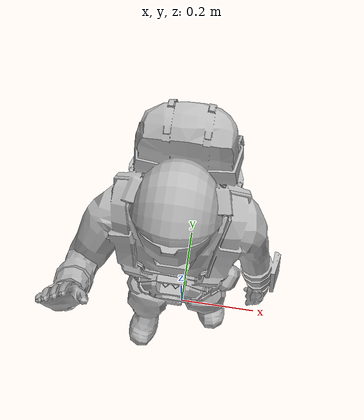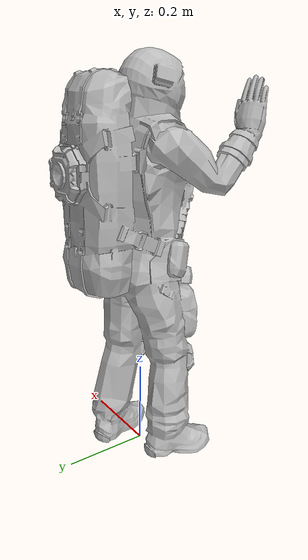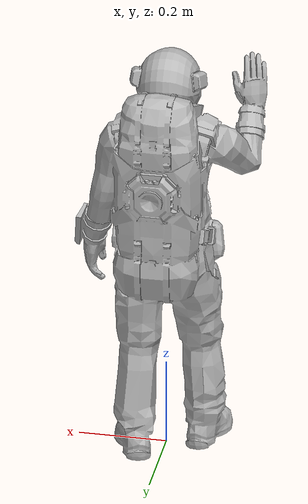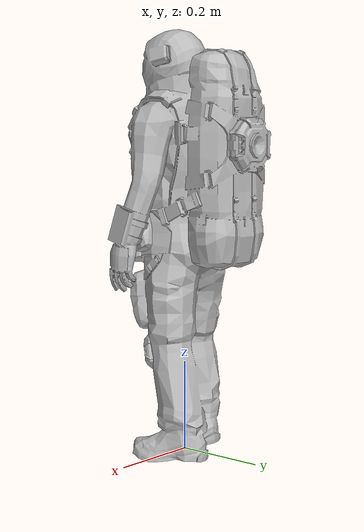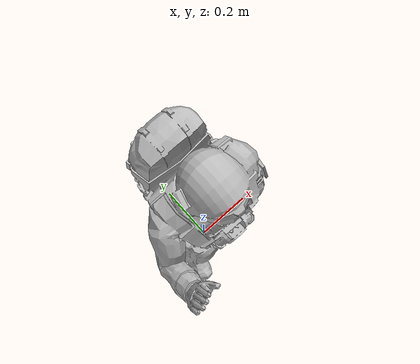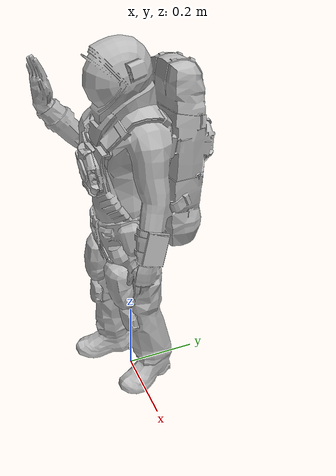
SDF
<?xml version="1.0" ?>
<sdf version='1.4'>
  <model name="astronaut">
      <static>1</static>
        <link name='link_1'>
            <visual name='visual'>
            <pose frame=''>0 0 0 0 0 0</pose>
            <geometry>
            <mesh>
                <uri>model://astronaut/meshes/astronaut.stl</uri>
                <scale>1 1 1</scale>
            </mesh>
            </geometry>
            <cast_shadows>0</cast_shadows>
            <transparency>0</transparency>
        </visual>

        <collision name='collision'>
            <laser_retro>0</laser_retro>
            <pose frame=''>0 0 0 0 0 0</pose>
            <geometry>
            <mesh>
                <uri>model://astronaut/meshes/astronaut.stl</uri>
                <scale>1 1 1</scale>
            </mesh>
            </geometry>
        </collision>
        </link>
  </model>
</sdf>
